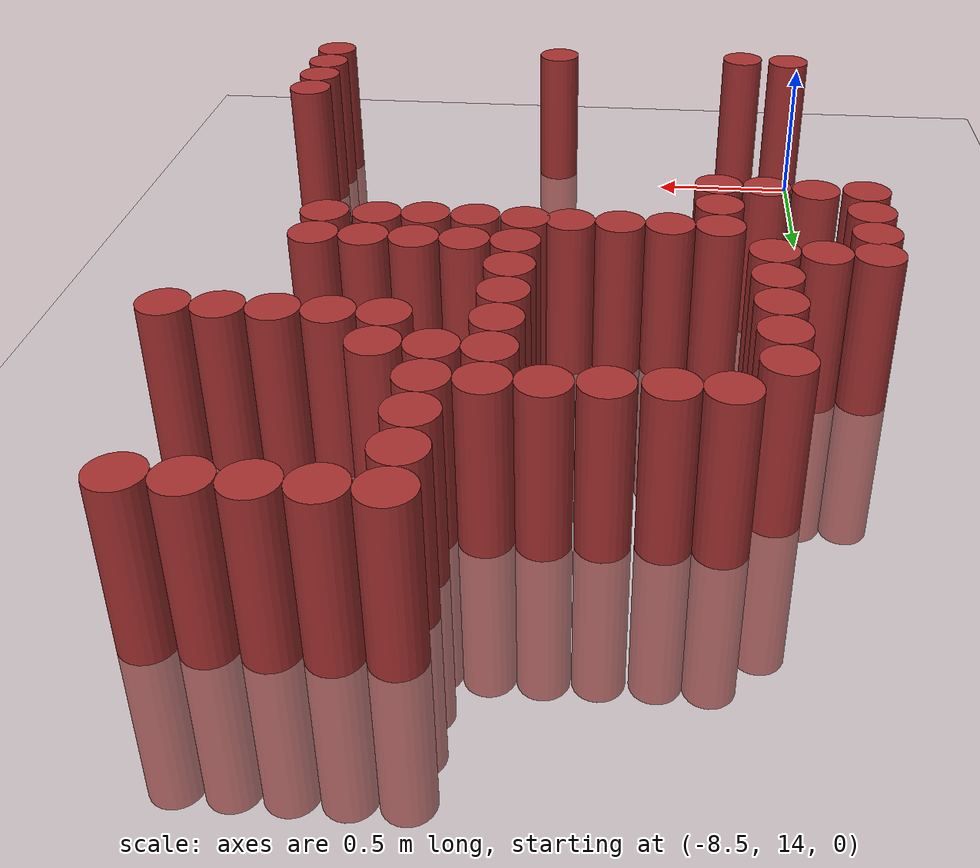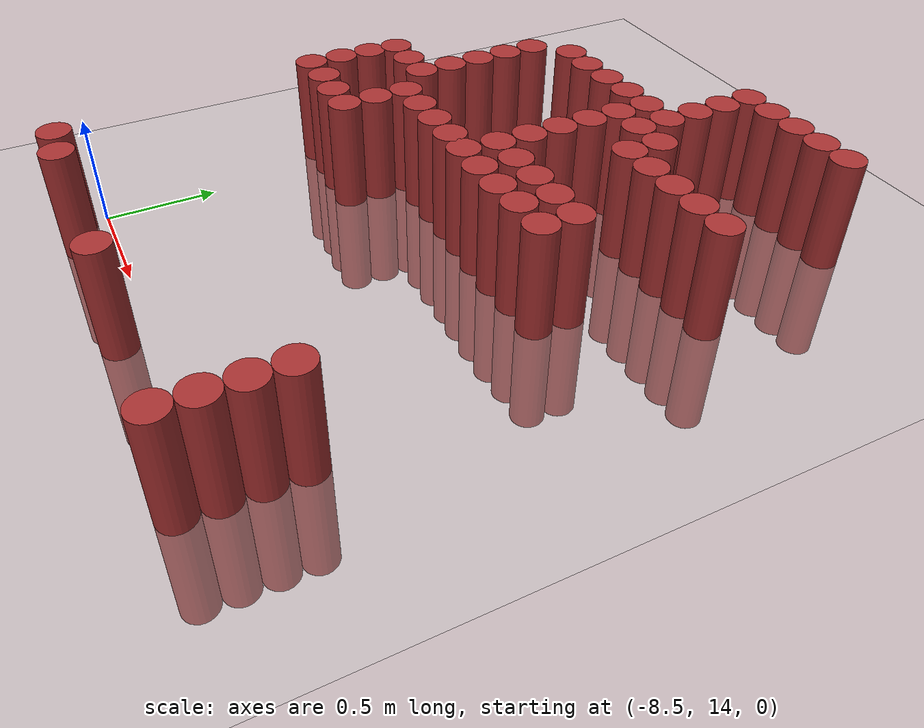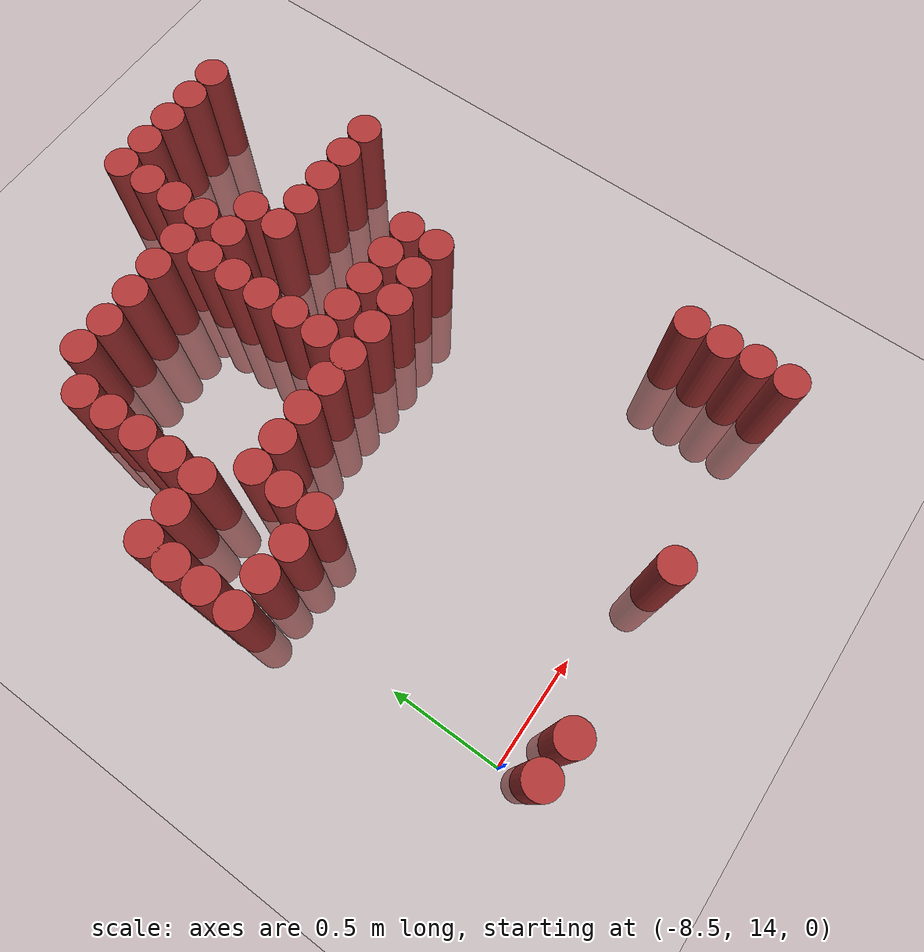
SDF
<sdf version="1.6">
 <world name="default">
  <model name="ground_plane">
   <static>1</static>
   <link name="link">
    <collision name="collision">
     <geometry><plane><normal>0 0 1</normal><size>100 100</size></plane></geometry>
     <surface><friction><ode><mu>100</mu><mu2>50</mu2></ode></friction></surface>
    </collision>
    <visual name="visual">
     <cast_shadows>0</cast_shadows>
     <geometry><plane><normal>0 0 1</normal><size>100 100</size></plane></geometry>
     <material>
      <script><uri>file://media/materials/scripts/gazebo.material</uri><name>Gazebo/Grey</name></script>
     </material>
    </visual>
   </link>
  </model>
  <model name="unit_cylinder_574">
   <static>1</static>
   <pose>-8.625 15.525 0 0 -0 0</pose>
   <link name="link">
    <inertial>
     <mass>1</mass>
     <inertia><ixx>0.145833</ixx><ixy>0</ixy><ixz>0</ixz><iyy>0.145833</iyy><iyz>0</iyz><izz>0.125</izz></inertia>
    </inertial>
    <collision name="collision">
     <geometry><cylinder><radius>0.075</radius><length>1</length></cylinder></geometry>
    </collision>
    <visual name="visual">
     <geometry><cylinder><radius>0.075</radius><length>1</length></cylinder></geometry>
     <material><ambient>0.648 0.192 0.192 1</ambient><diffuse>0.648 0.192 0.192 1</diffuse></material>
     <material>
      <script><name>Gazebo/Grey</name><uri>file://media/materials/scripts/gazebo.material</uri></script>
     </material>
    </visual>
   </link>
  </model>
  <model name="unit_cylinder_589">
   <static>1</static>
   <pose>-8.475 13.875 0 0 -0 0</pose>
   <link name="link">
    <inertial>
     <mass>1</mass>
     <inertia><ixx>0.145833</ixx><ixy>0</ixy><ixz>0</ixz><iyy>0.145833</iyy><iyz>0</iyz><izz>0.125</izz></inertia>
    </inertial>
    <collision name="collision">
     <geometry><cylinder><radius>0.075</radius><length>1</length></cylinder></geometry>
    </collision>
    <visual name="visual">
     <geometry><cylinder><radius>0.075</radius><length>1</length></cylinder></geometry>
     <material><ambient>0.648 0.192 0.192 1</ambient><diffuse>0.648 0.192 0.192 1</diffuse></material>
     <material>
      <script><name>Gazebo/Grey</name><uri>file://media/materials/scripts/gazebo.material</uri></script>
     </material>
    </visual>
   </link>
  </model>
  <model name="unit_cylinder_593">
   <static>1</static>
   <pose>-8.475 15.525 0 0 -0 0</pose>
   <link name="link">
    <inertial>
     <mass>1</mass>
     <inertia><ixx>0.145833</ixx><ixy>0</ixy><ixz>0</ixz><iyy>0.145833</iyy><iyz>0</iyz><izz>0.125</izz></inertia>
    </inertial>
    <collision name="collision">
     <geometry><cylinder><radius>0.075</radius><length>1</length></cylinder></geometry>
    </collision>
    <visual name="visual">
     <geometry><cylinder><radius>0.075</radius><length>1</length></cylinder></geometry>
     <material><ambient>0.648 0.192 0.192 1</ambient><diffuse>0.648 0.192 0.192 1</diffuse></material>
     <material>
      <script><name>Gazebo/Grey</name><uri>file://media/materials/scripts/gazebo.material</uri></script>
     </material>
    </visual>
   </link>
  </model>
  <model name="unit_cylinder_609">
   <static>1</static>
   <pose>-8.325 15.525 0 0 -0 0</pose>
   <link name="link">
    <inertial>
     <mass>1</mass>
     <inertia><ixx>0.145833</ixx><ixy>0</ixy><ixz>0</ixz><iyy>0.145833</iyy><iyz>0</iyz><izz>0.125</izz></inertia>
    </inertial>
    <collision name="collision">
     <geometry><cylinder><radius>0.075</radius><length>1</length></cylinder></geometry>
    </collision>
    <visual name="visual">
     <geometry><cylinder><radius>0.075</radius><length>1</length></cylinder></geometry>
     <material><ambient>0.648 0.192 0.192 1</ambient><diffuse>0.648 0.192 0.192 1</diffuse></material>
     <material>
      <script><name>Gazebo/Grey</name><uri>file://media/materials/scripts/gazebo.material</uri></script>
     </material>
    </visual>
   </link>
  </model>
  <model name="unit_cylinder_610">
   <static>1</static>
   <pose>-8.325 15.675 0 0 -0 0</pose>
   <link name="link">
    <inertial>
     <mass>1</mass>
     <inertia><ixx>0.145833</ixx><ixy>0</ixy><ixz>0</ixz><iyy>0.145833</iyy><iyz>0</iyz><izz>0.125</izz></inertia>
    </inertial>
    <collision name="collision">
     <geometry><cylinder><radius>0.075</radius><length>1</length></cylinder></geometry>
    </collision>
    <visual name="visual">
     <geometry><cylinder><radius>0.075</radius><length>1</length></cylinder></geometry>
     <material><ambient>0.648 0.192 0.192 1</ambient><diffuse>0.648 0.192 0.192 1</diffuse></material>
     <material>
      <script><name>Gazebo/Grey</name><uri>file://media/materials/scripts/gazebo.material</uri></script>
     </material>
    </visual>
   </link>
  </model>
  <model name="unit_cylinder_611">
   <static>1</static>
   <pose>-8.325 15.825 0 0 -0 0</pose>
   <link name="link">
    <inertial>
     <mass>1</mass>
     <inertia><ixx>0.145833</ixx><ixy>0</ixy><ixz>0</ixz><iyy>0.145833</iyy><iyz>0</iyz><izz>0.125</izz></inertia>
    </inertial>
    <collision name="collision">
     <geometry><cylinder><radius>0.075</radius><length>1</length></cylinder></geometry>
    </collision>
    <visual name="visual">
     <geometry><cylinder><radius>0.075</radius><length>1</length></cylinder></geometry>
     <material><ambient>0.648 0.192 0.192 1</ambient><diffuse>0.648 0.192 0.192 1</diffuse></material>
     <material>
      <script><name>Gazebo/Grey</name><uri>file://media/materials/scripts/gazebo.material</uri></script>
     </material>
    </visual>
   </link>
  </model>
  <model name="unit_cylinder_612">
   <static>1</static>
   <pose>-8.325 15.975 0 0 -0 0</pose>
   <link name="link">
    <inertial>
     <mass>1</mass>
     <inertia><ixx>0.145833</ixx><ixy>0</ixy><ixz>0</ixz><iyy>0.145833</iyy><iyz>0</iyz><izz>0.125</izz></inertia>
    </inertial>
    <collision name="collision">
     <geometry><cylinder><radius>0.075</radius><length>1</length></cylinder></geometry>
    </collision>
    <visual name="visual">
     <geometry><cylinder><radius>0.075</radius><length>1</length></cylinder></geometry>
     <material><ambient>0.648 0.192 0.192 1</ambient><diffuse>0.648 0.192 0.192 1</diffuse></material>
     <material>
      <script><name>Gazebo/Grey</name><uri>file://media/materials/scripts/gazebo.material</uri></script>
     </material>
    </visual>
   </link>
  </model>
  <model name="unit_cylinder_613">
   <static>1</static>
   <pose>-8.325 16.125 0 0 -0 0</pose>
   <link name="link">
    <inertial>
     <mass>1</mass>
     <inertia><ixx>0.145833</ixx><ixy>0</ixy><ixz>0</ixz><iyy>0.145833</iyy><iyz>0</iyz><izz>0.125</izz></inertia>
    </inertial>
    <collision name="collision">
     <geometry><cylinder><radius>0.075</radius><length>1</length></cylinder></geometry>
    </collision>
    <visual name="visual">
     <geometry><cylinder><radius>0.075</radius><length>1</length></cylinder></geometry>
     <material><ambient>0.648 0.192 0.192 1</ambient><diffuse>0.648 0.192 0.192 1</diffuse></material>
     <material>
      <script><name>Gazebo/Grey</name><uri>file://media/materials/scripts/gazebo.material</uri></script>
     </material>
    </visual>
   </link>
  </model>
  <model name="unit_cylinder_629">
   <static>1</static>
   <pose>-8.175 15.075 0 0 -0 0</pose>
   <link name="link">
    <inertial>
     <mass>1</mass>
     <inertia><ixx>0.145833</ixx><ixy>0</ixy><ixz>0</ixz><iyy>0.145833</iyy><iyz>0</iyz><izz>0.125</izz></inertia>
    </inertial>
    <collision name="collision">
     <geometry><cylinder><radius>0.075</radius><length>1</length></cylinder></geometry>
    </collision>
    <visual name="visual">
     <geometry><cylinder><radius>0.075</radius><length>1</length></cylinder></geometry>
     <material><ambient>0.648 0.192 0.192 1</ambient><diffuse>0.648 0.192 0.192 1</diffuse></material>
     <material>
      <script><name>Gazebo/Grey</name><uri>file://media/materials/scripts/gazebo.material</uri></script>
     </material>
    </visual>
   </link>
  </model>
  <model name="unit_cylinder_630">
   <static>1</static>
   <pose>-8.175 15.225 0 0 -0 0</pose>
   <link name="link">
    <inertial>
     <mass>1</mass>
     <inertia><ixx>0.145833</ixx><ixy>0</ixy><ixz>0</ixz><iyy>0.145833</iyy><iyz>0</iyz><izz>0.125</izz></inertia>
    </inertial>
    <collision name="collision">
     <geometry><cylinder><radius>0.075</radius><length>1</length></cylinder></geometry>
    </collision>
    <visual name="visual">
     <geometry><cylinder><radius>0.075</radius><length>1</length></cylinder></geometry>
     <material><ambient>0.648 0.192 0.192 1</ambient><diffuse>0.648 0.192 0.192 1</diffuse></material>
     <material>
      <script><name>Gazebo/Grey</name><uri>file://media/materials/scripts/gazebo.material</uri></script>
     </material>
    </visual>
   </link>
  </model>
  <model name="unit_cylinder_631">
   <static>1</static>
   <pose>-8.175 15.375 0 0 -0 0</pose>
   <link name="link">
    <inertial>
     <mass>1</mass>
     <inertia><ixx>0.145833</ixx><ixy>0</ixy><ixz>0</ixz><iyy>0.145833</iyy><iyz>0</iyz><izz>0.125</izz></inertia>
    </inertial>
    <collision name="collision">
     <geometry><cylinder><radius>0.075</radius><length>1</length></cylinder></geometry>
    </collision>
    <visual name="visual">
     <geometry><cylinder><radius>0.075</radius><length>1</length></cylinder></geometry>
     <material><ambient>0.648 0.192 0.192 1</ambient><diffuse>0.648 0.192 0.192 1</diffuse></material>
     <material>
      <script><name>Gazebo/Grey</name><uri>file://media/materials/scripts/gazebo.material</uri></script>
     </material>
    </visual>
   </link>
  </model>
  <model name="unit_cylinder_650">
   <static>1</static>
   <pose>-8.025 15.375 0 0 -0 0</pose>
   <link name="link">
    <inertial>
     <mass>1</mass>
     <inertia><ixx>0.145833</ixx><ixy>0</ixy><ixz>0</ixz><iyy>0.145833</iyy><iyz>0</iyz><izz>0.125</izz></inertia>
    </inertial>
    <collision name="collision">
     <geometry><cylinder><radius>0.075</radius><length>1</length></cylinder></geometry>
    </collision>
    <visual name="visual">
     <geometry><cylinder><radius>0.075</radius><length>1</length></cylinder></geometry>
     <material><ambient>0.648 0.192 0.192 1</ambient><diffuse>0.648 0.192 0.192 1</diffuse></material>
     <material>
      <script><name>Gazebo/Grey</name><uri>file://media/materials/scripts/gazebo.material</uri></script>
     </material>
    </visual>
   </link>
  </model>
  <model name="unit_cylinder_661">
   <static>1</static>
   <pose>-7.875 15.375 0 0 -0 0</pose>
   <link name="link">
    <inertial>
     <mass>1</mass>
     <inertia><ixx>0.145833</ixx><ixy>0</ixy><ixz>0</ixz><iyy>0.145833</iyy><iyz>0</iyz><izz>0.125</izz></inertia>
    </inertial>
    <collision name="collision">
     <geometry><cylinder><radius>0.075</radius><length>1</length></cylinder></geometry>
    </collision>
    <visual name="visual">
     <geometry><cylinder><radius>0.075</radius><length>1</length></cylinder></geometry>
     <material><ambient>0.648 0.192 0.192 1</ambient><diffuse>0.648 0.192 0.192 1</diffuse></material>
     <material>
      <script><name>Gazebo/Grey</name><uri>file://media/materials/scripts/gazebo.material</uri></script>
     </material>
    </visual>
   </link>
  </model>
  <model name="unit_cylinder_687">
   <static>1</static>
   <pose>-7.725 15.375 0 0 -0 0</pose>
   <link name="link">
    <inertial>
     <mass>1</mass>
     <inertia><ixx>0.145833</ixx><ixy>0</ixy><ixz>0</ixz><iyy>0.145833</iyy><iyz>0</iyz><izz>0.125</izz></inertia>
    </inertial>
    <collision name="collision">
     <geometry><cylinder><radius>0.075</radius><length>1</length></cylinder></geometry>
    </collision>
    <visual name="visual">
     <geometry><cylinder><radius>0.075</radius><length>1</length></cylinder></geometry>
     <material><ambient>0.648 0.192 0.192 1</ambient><diffuse>0.648 0.192 0.192 1</diffuse></material>
     <material>
      <script><name>Gazebo/Grey</name><uri>file://media/materials/scripts/gazebo.material</uri></script>
     </material>
    </visual>
   </link>
  </model>
  <model name="unit_cylinder_688">
   <static>1</static>
   <pose>-7.725 16.275 0 0 -0 0</pose>
   <link name="link">
    <inertial>
     <mass>1</mass>
     <inertia><ixx>0.145833</ixx><ixy>0</ixy><ixz>0</ixz><iyy>0.145833</iyy><iyz>0</iyz><izz>0.125</izz></inertia>
    </inertial>
    <collision name="collision">
     <geometry><cylinder><radius>0.075</radius><length>1</length></cylinder></geometry>
    </collision>
    <visual name="visual">
     <geometry><cylinder><radius>0.075</radius><length>1</length></cylinder></geometry>
     <material><ambient>0.648 0.192 0.192 1</ambient><diffuse>0.648 0.192 0.192 1</diffuse></material>
     <material>
      <script><name>Gazebo/Grey</name><uri>file://media/materials/scripts/gazebo.material</uri></script>
     </material>
    </visual>
   </link>
  </model>
  <model name="unit_cylinder_707">
   <static>1</static>
   <pose>-7.575 13.875 0 0 -0 0</pose>
   <link name="link">
    <inertial>
     <mass>1</mass>
     <inertia><ixx>0.145833</ixx><ixy>0</ixy><ixz>0</ixz><iyy>0.145833</iyy><iyz>0</iyz><izz>0.125</izz></inertia>
    </inertial>
    <collision name="collision">
     <geometry><cylinder><radius>0.075</radius><length>1</length></cylinder></geometry>
    </collision>
    <visual name="visual">
     <geometry><cylinder><radius>0.075</radius><length>1</length></cylinder></geometry>
     <material><ambient>0.648 0.192 0.192 1</ambient><diffuse>0.648 0.192 0.192 1</diffuse></material>
     <material>
      <script><name>Gazebo/Grey</name><uri>file://media/materials/scripts/gazebo.material</uri></script>
     </material>
    </visual>
   </link>
  </model>
  <model name="unit_cylinder_711">
   <static>1</static>
   <pose>-7.575 15.525 0 0 -0 0</pose>
   <link name="link">
    <inertial>
     <mass>1</mass>
     <inertia><ixx>0.145833</ixx><ixy>0</ixy><ixz>0</ixz><iyy>0.145833</iyy><iyz>0</iyz><izz>0.125</izz></inertia>
    </inertial>
    <collision name="collision">
     <geometry><cylinder><radius>0.075</radius><length>1</length></cylinder></geometry>
    </collision>
    <visual name="visual">
     <geometry><cylinder><radius>0.075</radius><length>1</length></cylinder></geometry>
     <material><ambient>0.648 0.192 0.192 1</ambient><diffuse>0.648 0.192 0.192 1</diffuse></material>
     <material>
      <script><name>Gazebo/Grey</name><uri>file://media/materials/scripts/gazebo.material</uri></script>
     </material>
    </visual>
   </link>
  </model>
  <model name="unit_cylinder_712">
   <static>1</static>
   <pose>-7.575 15.675 0 0 -0 0</pose>
   <link name="link">
    <inertial>
     <mass>1</mass>
     <inertia><ixx>0.145833</ixx><ixy>0</ixy><ixz>0</ixz><iyy>0.145833</iyy><iyz>0</iyz><izz>0.125</izz></inertia>
    </inertial>
    <collision name="collision">
     <geometry><cylinder><radius>0.075</radius><length>1</length></cylinder></geometry>
    </collision>
    <visual name="visual">
     <geometry><cylinder><radius>0.075</radius><length>1</length></cylinder></geometry>
     <material><ambient>0.648 0.192 0.192 1</ambient><diffuse>0.648 0.192 0.192 1</diffuse></material>
     <material>
      <script><name>Gazebo/Grey</name><uri>file://media/materials/scripts/gazebo.material</uri></script>
     </material>
    </visual>
   </link>
  </model>
  <model name="unit_cylinder_713">
   <static>1</static>
   <pose>-7.575 15.825 0 0 -0 0</pose>
   <link name="link">
    <inertial>
     <mass>1</mass>
     <inertia><ixx>0.145833</ixx><ixy>0</ixy><ixz>0</ixz><iyy>0.145833</iyy><iyz>0</iyz><izz>0.125</izz></inertia>
    </inertial>
    <collision name="collision">
     <geometry><cylinder><radius>0.075</radius><length>1</length></cylinder></geometry>
    </collision>
    <visual name="visual">
     <geometry><cylinder><radius>0.075</radius><length>1</length></cylinder></geometry>
     <material><ambient>0.648 0.192 0.192 1</ambient><diffuse>0.648 0.192 0.192 1</diffuse></material>
     <material>
      <script><name>Gazebo/Grey</name><uri>file://media/materials/scripts/gazebo.material</uri></script>
     </material>
    </visual>
   </link>
  </model>
  <model name="unit_cylinder_714">
   <static>1</static>
   <pose>-7.575 15.975 0 0 -0 0</pose>
   <link name="link">
    <inertial>
     <mass>1</mass>
     <inertia><ixx>0.145833</ixx><ixy>0</ixy><ixz>0</ixz><iyy>0.145833</iyy><iyz>0</iyz><izz>0.125</izz></inertia>
    </inertial>
    <collision name="collision">
     <geometry><cylinder><radius>0.075</radius><length>1</length></cylinder></geometry>
    </collision>
    <visual name="visual">
     <geometry><cylinder><radius>0.075</radius><length>1</length></cylinder></geometry>
     <material><ambient>0.648 0.192 0.192 1</ambient><diffuse>0.648 0.192 0.192 1</diffuse></material>
     <material>
      <script><name>Gazebo/Grey</name><uri>file://media/materials/scripts/gazebo.material</uri></script>
     </material>
    </visual>
   </link>
  </model>
  <model name="unit_cylinder_715">
   <static>1</static>
   <pose>-7.575 16.125 0 0 -0 0</pose>
   <link name="link">
    <inertial>
     <mass>1</mass>
     <inertia><ixx>0.145833</ixx><ixy>0</ixy><ixz>0</ixz><iyy>0.145833</iyy><iyz>0</iyz><izz>0.125</izz></inertia>
    </inertial>
    <collision name="collision">
     <geometry><cylinder><radius>0.075</radius><length>1</length></cylinder></geometry>
    </collision>
    <visual name="visual">
     <geometry><cylinder><radius>0.075</radius><length>1</length></cylinder></geometry>
     <material><ambient>0.648 0.192 0.192 1</ambient><diffuse>0.648 0.192 0.192 1</diffuse></material>
     <material>
      <script><name>Gazebo/Grey</name><uri>file://media/materials/scripts/gazebo.material</uri></script>
     </material>
    </visual>
   </link>
  </model>
  <model name="unit_cylinder_716">
   <static>1</static>
   <pose>-7.575 16.275 0 0 -0 0</pose>
   <link name="link">
    <inertial>
     <mass>1</mass>
     <inertia><ixx>0.145833</ixx><ixy>0</ixy><ixz>0</ixz><iyy>0.145833</iyy><iyz>0</iyz><izz>0.125</izz></inertia>
    </inertial>
    <collision name="collision">
     <geometry><cylinder><radius>0.075</radius><length>1</length></cylinder></geometry>
    </collision>
    <visual name="visual">
     <geometry><cylinder><radius>0.075</radius><length>1</length></cylinder></geometry>
     <material><ambient>0.648 0.192 0.192 1</ambient><diffuse>0.648 0.192 0.192 1</diffuse></material>
     <material>
      <script><name>Gazebo/Grey</name><uri>file://media/materials/scripts/gazebo.material</uri></script>
     </material>
    </visual>
   </link>
  </model>
  <model name="unit_cylinder_734">
   <static>1</static>
   <pose>-7.425 15.525 0 0 -0 0</pose>
   <link name="link">
    <inertial>
     <mass>1</mass>
     <inertia><ixx>0.145833</ixx><ixy>0</ixy><ixz>0</ixz><iyy>0.145833</iyy><iyz>0</iyz><izz>0.125</izz></inertia>
    </inertial>
    <collision name="collision">
     <geometry><cylinder><radius>0.075</radius><length>1</length></cylinder></geometry>
    </collision>
    <visual name="visual">
     <geometry><cylinder><radius>0.075</radius><length>1</length></cylinder></geometry>
     <material><ambient>0.648 0.192 0.192 1</ambient><diffuse>0.648 0.192 0.192 1</diffuse></material>
     <material>
      <script><name>Gazebo/Grey</name><uri>file://media/materials/scripts/gazebo.material</uri></script>
     </material>
    </visual>
   </link>
  </model>
  <model name="unit_cylinder_735">
   <static>1</static>
   <pose>-7.425 16.125 0 0 -0 0</pose>
   <link name="link">
    <inertial>
     <mass>1</mass>
     <inertia><ixx>0.145833</ixx><ixy>0</ixy><ixz>0</ixz><iyy>0.145833</iyy><iyz>0</iyz><izz>0.125</izz></inertia>
    </inertial>
    <collision name="collision">
     <geometry><cylinder><radius>0.075</radius><length>1</length></cylinder></geometry>
    </collision>
    <visual name="visual">
     <geometry><cylinder><radius>0.075</radius><length>1</length></cylinder></geometry>
     <material><ambient>0.648 0.192 0.192 1</ambient><diffuse>0.648 0.192 0.192 1</diffuse></material>
     <material>
      <script><name>Gazebo/Grey</name><uri>file://media/materials/scripts/gazebo.material</uri></script>
     </material>
    </visual>
   </link>
  </model>
  <model name="unit_cylinder_736">
   <static>1</static>
   <pose>-7.425 16.275 0 0 -0 0</pose>
   <link name="link">
    <inertial>
     <mass>1</mass>
     <inertia><ixx>0.145833</ixx><ixy>0</ixy><ixz>0</ixz><iyy>0.145833</iyy><iyz>0</iyz><izz>0.125</izz></inertia>
    </inertial>
    <collision name="collision">
     <geometry><cylinder><radius>0.075</radius><length>1</length></cylinder></geometry>
    </collision>
    <visual name="visual">
     <geometry><cylinder><radius>0.075</radius><length>1</length></cylinder></geometry>
     <material><ambient>0.648 0.192 0.192 1</ambient><diffuse>0.648 0.192 0.192 1</diffuse></material>
     <material>
      <script><name>Gazebo/Grey</name><uri>file://media/materials/scripts/gazebo.material</uri></script>
     </material>
    </visual>
   </link>
  </model>
  <model name="unit_cylinder_737">
   <static>1</static>
   <pose>-7.425 16.425 0 0 -0 0</pose>
   <link name="link">
    <inertial>
     <mass>1</mass>
     <inertia><ixx>0.145833</ixx><ixy>0</ixy><ixz>0</ixz><iyy>0.145833</iyy><iyz>0</iyz><izz>0.125</izz></inertia>
    </inertial>
    <collision name="collision">
     <geometry><cylinder><radius>0.075</radius><length>1</length></cylinder></geometry>
    </collision>
    <visual name="visual">
     <geometry><cylinder><radius>0.075</radius><length>1</length></cylinder></geometry>
     <material><ambient>0.648 0.192 0.192 1</ambient><diffuse>0.648 0.192 0.192 1</diffuse></material>
     <material>
      <script><name>Gazebo/Grey</name><uri>file://media/materials/scripts/gazebo.material</uri></script>
     </material>
    </visual>
   </link>
  </model>
  <model name="unit_cylinder_738">
   <static>1</static>
   <pose>-7.425 16.575 0 0 -0 0</pose>
   <link name="link">
    <inertial>
     <mass>1</mass>
     <inertia><ixx>0.145833</ixx><ixy>0</ixy><ixz>0</ixz><iyy>0.145833</iyy><iyz>0</iyz><izz>0.125</izz></inertia>
    </inertial>
    <collision name="collision">
     <geometry><cylinder><radius>0.075</radius><length>1</length></cylinder></geometry>
    </collision>
    <visual name="visual">
     <geometry><cylinder><radius>0.075</radius><length>1</length></cylinder></geometry>
     <material><ambient>0.648 0.192 0.192 1</ambient><diffuse>0.648 0.192 0.192 1</diffuse></material>
     <material>
      <script><name>Gazebo/Grey</name><uri>file://media/materials/scripts/gazebo.material</uri></script>
     </material>
    </visual>
   </link>
  </model>
  <model name="unit_cylinder_739">
   <static>1</static>
   <pose>-7.425 16.725 0 0 -0 0</pose>
   <link name="link">
    <inertial>
     <mass>1</mass>
     <inertia><ixx>0.145833</ixx><ixy>0</ixy><ixz>0</ixz><iyy>0.145833</iyy><iyz>0</iyz><izz>0.125</izz></inertia>
    </inertial>
    <collision name="collision">
     <geometry><cylinder><radius>0.075</radius><length>1</length></cylinder></geometry>
    </collision>
    <visual name="visual">
     <geometry><cylinder><radius>0.075</radius><length>1</length></cylinder></geometry>
     <material><ambient>0.648 0.192 0.192 1</ambient><diffuse>0.648 0.192 0.192 1</diffuse></material>
     <material>
      <script><name>Gazebo/Grey</name><uri>file://media/materials/scripts/gazebo.material</uri></script>
     </material>
    </visual>
   </link>
  </model>
  <model name="unit_cylinder_757">
   <static>1</static>
   <pose>-7.275 15.525 0 0 -0 0</pose>
   <link name="link">
    <inertial>
     <mass>1</mass>
     <inertia><ixx>0.145833</ixx><ixy>0</ixy><ixz>0</ixz><iyy>0.145833</iyy><iyz>0</iyz><izz>0.125</izz></inertia>
    </inertial>
    <collision name="collision">
     <geometry><cylinder><radius>0.075</radius><length>1</length></cylinder></geometry>
    </collision>
    <visual name="visual">
     <geometry><cylinder><radius>0.075</radius><length>1</length></cylinder></geometry>
     <material><ambient>0.648 0.192 0.192 1</ambient><diffuse>0.648 0.192 0.192 1</diffuse></material>
     <material>
      <script><name>Gazebo/Grey</name><uri>file://media/materials/scripts/gazebo.material</uri></script>
     </material>
    </visual>
   </link>
  </model>
  <model name="unit_cylinder_758">
   <static>1</static>
   <pose>-7.275 15.975 0 0 -0 0</pose>
   <link name="link">
    <inertial>
     <mass>1</mass>
     <inertia><ixx>0.145833</ixx><ixy>0</ixy><ixz>0</ixz><iyy>0.145833</iyy><iyz>0</iyz><izz>0.125</izz></inertia>
    </inertial>
    <collision name="collision">
     <geometry><cylinder><radius>0.075</radius><length>1</length></cylinder></geometry>
    </collision>
    <visual name="visual">
     <geometry><cylinder><radius>0.075</radius><length>1</length></cylinder></geometry>
     <material><ambient>0.648 0.192 0.192 1</ambient><diffuse>0.648 0.192 0.192 1</diffuse></material>
     <material>
      <script><name>Gazebo/Grey</name><uri>file://media/materials/scripts/gazebo.material</uri></script>
     </material>
    </visual>
   </link>
  </model>
  <model name="unit_cylinder_759">
   <static>1</static>
   <pose>-7.275 16.125 0 0 -0 0</pose>
   <link name="link">
    <inertial>
     <mass>1</mass>
     <inertia><ixx>0.145833</ixx><ixy>0</ixy><ixz>0</ixz><iyy>0.145833</iyy><iyz>0</iyz><izz>0.125</izz></inertia>
    </inertial>
    <collision name="collision">
     <geometry><cylinder><radius>0.075</radius><length>1</length></cylinder></geometry>
    </collision>
    <visual name="visual">
     <geometry><cylinder><radius>0.075</radius><length>1</length></cylinder></geometry>
     <material><ambient>0.648 0.192 0.192 1</ambient><diffuse>0.648 0.192 0.192 1</diffuse></material>
     <material>
      <script><name>Gazebo/Grey</name><uri>file://media/materials/scripts/gazebo.material</uri></script>
     </material>
    </visual>
   </link>
  </model>
  <model name="unit_cylinder_760">
   <static>1</static>
   <pose>-7.275 16.725 0 0 -0 0</pose>
   <link name="link">
    <inertial>
     <mass>1</mass>
     <inertia><ixx>0.145833</ixx><ixy>0</ixy><ixz>0</ixz><iyy>0.145833</iyy><iyz>0</iyz><izz>0.125</izz></inertia>
    </inertial>
    <collision name="collision">
     <geometry><cylinder><radius>0.075</radius><length>1</length></cylinder></geometry>
    </collision>
    <visual name="visual">
     <geometry><cylinder><radius>0.075</radius><length>1</length></cylinder></geometry>
     <material><ambient>0.648 0.192 0.192 1</ambient><diffuse>0.648 0.192 0.192 1</diffuse></material>
     <material>
      <script><name>Gazebo/Grey</name><uri>file://media/materials/scripts/gazebo.material</uri></script>
     </material>
    </visual>
   </link>
  </model>
  <model name="unit_cylinder_778">
   <static>1</static>
   <pose>-7.125 15.525 0 0 -0 0</pose>
   <link name="link">
    <inertial>
     <mass>1</mass>
     <inertia><ixx>0.145833</ixx><ixy>0</ixy><ixz>0</ixz><iyy>0.145833</iyy><iyz>0</iyz><izz>0.125</izz></inertia>
    </inertial>
    <collision name="collision">
     <geometry><cylinder><radius>0.075</radius><length>1</length></cylinder></geometry>
    </collision>
    <visual name="visual">
     <geometry><cylinder><radius>0.075</radius><length>1</length></cylinder></geometry>
     <material><ambient>0.648 0.192 0.192 1</ambient><diffuse>0.648 0.192 0.192 1</diffuse></material>
     <material>
      <script><name>Gazebo/Grey</name><uri>file://media/materials/scripts/gazebo.material</uri></script>
     </material>
    </visual>
   </link>
  </model>
  <model name="unit_cylinder_779">
   <static>1</static>
   <pose>-7.125 15.975 0 0 -0 0</pose>
   <link name="link">
    <inertial>
     <mass>1</mass>
     <inertia><ixx>0.145833</ixx><ixy>0</ixy><ixz>0</ixz><iyy>0.145833</iyy><iyz>0</iyz><izz>0.125</izz></inertia>
    </inertial>
    <collision name="collision">
     <geometry><cylinder><radius>0.075</radius><length>1</length></cylinder></geometry>
    </collision>
    <visual name="visual">
     <geometry><cylinder><radius>0.075</radius><length>1</length></cylinder></geometry>
     <material><ambient>0.648 0.192 0.192 1</ambient><diffuse>0.648 0.192 0.192 1</diffuse></material>
     <material>
      <script><name>Gazebo/Grey</name><uri>file://media/materials/scripts/gazebo.material</uri></script>
     </material>
    </visual>
   </link>
  </model>
  <model name="unit_cylinder_780">
   <static>1</static>
   <pose>-7.125 16.725 0 0 -0 0</pose>
   <link name="link">
    <inertial>
     <mass>1</mass>
     <inertia><ixx>0.145833</ixx><ixy>0</ixy><ixz>0</ixz><iyy>0.145833</iyy><iyz>0</iyz><izz>0.125</izz></inertia>
    </inertial>
    <collision name="collision">
     <geometry><cylinder><radius>0.075</radius><length>1</length></cylinder></geometry>
    </collision>
    <visual name="visual">
     <geometry><cylinder><radius>0.075</radius><length>1</length></cylinder></geometry>
     <material><ambient>0.648 0.192 0.192 1</ambient><diffuse>0.648 0.192 0.192 1</diffuse></material>
     <material>
      <script><name>Gazebo/Grey</name><uri>file://media/materials/scripts/gazebo.material</uri></script>
     </material>
    </visual>
   </link>
  </model>
  <model name="unit_cylinder_791">
   <static>1</static>
   <pose>-6.975 15.375 0 0 -0 0</pose>
   <link name="link">
    <inertial>
     <mass>1</mass>
     <inertia><ixx>0.145833</ixx><ixy>0</ixy><ixz>0</ixz><iyy>0.145833</iyy><iyz>0</iyz><izz>0.125</izz></inertia>
    </inertial>
    <collision name="collision">
     <geometry><cylinder><radius>0.075</radius><length>1</length></cylinder></geometry>
    </collision>
    <visual name="visual">
     <geometry><cylinder><radius>0.075</radius><length>1</length></cylinder></geometry>
     <material><ambient>0.648 0.192 0.192 1</ambient><diffuse>0.648 0.192 0.192 1</diffuse></material>
     <material>
      <script><name>Gazebo/Grey</name><uri>file://media/materials/scripts/gazebo.material</uri></script>
     </material>
    </visual>
   </link>
  </model>
  <model name="unit_cylinder_792">
   <static>1</static>
   <pose>-6.975 15.525 0 0 -0 0</pose>
   <link name="link">
    <inertial>
     <mass>1</mass>
     <inertia><ixx>0.145833</ixx><ixy>0</ixy><ixz>0</ixz><iyy>0.145833</iyy><iyz>0</iyz><izz>0.125</izz></inertia>
    </inertial>
    <collision name="collision">
     <geometry><cylinder><radius>0.075</radius><length>1</length></cylinder></geometry>
    </collision>
    <visual name="visual">
     <geometry><cylinder><radius>0.075</radius><length>1</length></cylinder></geometry>
     <material><ambient>0.648 0.192 0.192 1</ambient><diffuse>0.648 0.192 0.192 1</diffuse></material>
     <material>
      <script><name>Gazebo/Grey</name><uri>file://media/materials/scripts/gazebo.material</uri></script>
     </material>
    </visual>
   </link>
  </model>
  <model name="unit_cylinder_793">
   <static>1</static>
   <pose>-6.975 15.975 0 0 -0 0</pose>
   <link name="link">
    <inertial>
     <mass>1</mass>
     <inertia><ixx>0.145833</ixx><ixy>0</ixy><ixz>0</ixz><iyy>0.145833</iyy><iyz>0</iyz><izz>0.125</izz></inertia>
    </inertial>
    <collision name="collision">
     <geometry><cylinder><radius>0.075</radius><length>1</length></cylinder></geometry>
    </collision>
    <visual name="visual">
     <geometry><cylinder><radius>0.075</radius><length>1</length></cylinder></geometry>
     <material><ambient>0.648 0.192 0.192 1</ambient><diffuse>0.648 0.192 0.192 1</diffuse></material>
     <material>
      <script><name>Gazebo/Grey</name><uri>file://media/materials/scripts/gazebo.material</uri></script>
     </material>
    </visual>
   </link>
  </model>
  <model name="unit_cylinder_794">
   <static>1</static>
   <pose>-6.975 16.725 0 0 -0 0</pose>
   <link name="link">
    <inertial>
     <mass>1</mass>
     <inertia><ixx>0.145833</ixx><ixy>0</ixy><ixz>0</ixz><iyy>0.145833</iyy><iyz>0</iyz><izz>0.125</izz></inertia>
    </inertial>
    <collision name="collision">
     <geometry><cylinder><radius>0.075</radius><length>1</length></cylinder></geometry>
    </collision>
    <visual name="visual">
     <geometry><cylinder><radius>0.075</radius><length>1</length></cylinder></geometry>
     <material><ambient>0.648 0.192 0.192 1</ambient><diffuse>0.648 0.192 0.192 1</diffuse></material>
     <material>
      <script><name>Gazebo/Grey</name><uri>file://media/materials/scripts/gazebo.material</uri></script>
     </material>
    </visual>
   </link>
  </model>
  <model name="unit_cylinder_807">
   <static>1</static>
   <pose>-6.825 15.975 0 0 -0 0</pose>
   <link name="link">
    <inertial>
     <mass>1</mass>
     <inertia><ixx>0.145833</ixx><ixy>0</ixy><ixz>0</ixz><iyy>0.145833</iyy><iyz>0</iyz><izz>0.125</izz></inertia>
    </inertial>
    <collision name="collision">
     <geometry><cylinder><radius>0.075</radius><length>1</length></cylinder></geometry>
    </collision>
    <visual name="visual">
     <geometry><cylinder><radius>0.075</radius><length>1</length></cylinder></geometry>
     <material><ambient>0.648 0.192 0.192 1</ambient><diffuse>0.648 0.192 0.192 1</diffuse></material>
     <material>
      <script><name>Gazebo/Grey</name><uri>file://media/materials/scripts/gazebo.material</uri></script>
     </material>
    </visual>
   </link>
  </model>
  <model name="unit_cylinder_808">
   <static>1</static>
   <pose>-6.825 16.725 0 0 -0 0</pose>
   <link name="link">
    <inertial>
     <mass>1</mass>
     <inertia><ixx>0.145833</ixx><ixy>0</ixy><ixz>0</ixz><iyy>0.145833</iyy><iyz>0</iyz><izz>0.125</izz></inertia>
    </inertial>
    <collision name="collision">
     <geometry><cylinder><radius>0.075</radius><length>1</length></cylinder></geometry>
    </collision>
    <visual name="visual">
     <geometry><cylinder><radius>0.075</radius><length>1</length></cylinder></geometry>
     <material><ambient>0.648 0.192 0.192 1</ambient><diffuse>0.648 0.192 0.192 1</diffuse></material>
     <material>
      <script><name>Gazebo/Grey</name><uri>file://media/materials/scripts/gazebo.material</uri></script>
     </material>
    </visual>
   </link>
  </model>
  <model name="unit_cylinder_826">
   <static>1</static>
   <pose>-6.675 13.875 0 0 -0 0</pose>
   <link name="link">
    <inertial>
     <mass>1</mass>
     <inertia><ixx>0.145833</ixx><ixy>0</ixy><ixz>0</ixz><iyy>0.145833</iyy><iyz>0</iyz><izz>0.125</izz></inertia>
    </inertial>
    <collision name="collision">
     <geometry><cylinder><radius>0.075</radius><length>1</length></cylinder></geometry>
    </collision>
    <visual name="visual">
     <geometry><cylinder><radius>0.075</radius><length>1</length></cylinder></geometry>
     <material><ambient>0.648 0.192 0.192 1</ambient><diffuse>0.648 0.192 0.192 1</diffuse></material>
     <material>
      <script><name>Gazebo/Grey</name><uri>file://media/materials/scripts/gazebo.material</uri></script>
     </material>
    </visual>
   </link>
  </model>
  <model name="unit_cylinder_827">
   <static>1</static>
   <pose>-6.675 14.025 0 0 -0 0</pose>
   <link name="link">
    <inertial>
     <mass>1</mass>
     <inertia><ixx>0.145833</ixx><ixy>0</ixy><ixz>0</ixz><iyy>0.145833</iyy><iyz>0</iyz><izz>0.125</izz></inertia>
    </inertial>
    <collision name="collision">
     <geometry><cylinder><radius>0.075</radius><length>1</length></cylinder></geometry>
    </collision>
    <visual name="visual">
     <geometry><cylinder><radius>0.075</radius><length>1</length></cylinder></geometry>
     <material><ambient>0.648 0.192 0.192 1</ambient><diffuse>0.648 0.192 0.192 1</diffuse></material>
     <material>
      <script><name>Gazebo/Grey</name><uri>file://media/materials/scripts/gazebo.material</uri></script>
     </material>
    </visual>
   </link>
  </model>
  <model name="unit_cylinder_828">
   <static>1</static>
   <pose>-6.675 14.175 0 0 -0 0</pose>
   <link name="link">
    <inertial>
     <mass>1</mass>
     <inertia><ixx>0.145833</ixx><ixy>0</ixy><ixz>0</ixz><iyy>0.145833</iyy><iyz>0</iyz><izz>0.125</izz></inertia>
    </inertial>
    <collision name="collision">
     <geometry><cylinder><radius>0.075</radius><length>1</length></cylinder></geometry>
    </collision>
    <visual name="visual">
     <geometry><cylinder><radius>0.075</radius><length>1</length></cylinder></geometry>
     <material><ambient>0.648 0.192 0.192 1</ambient><diffuse>0.648 0.192 0.192 1</diffuse></material>
     <material>
      <script><name>Gazebo/Grey</name><uri>file://media/materials/scripts/gazebo.material</uri></script>
     </material>
    </visual>
   </link>
  </model>
  <model name="unit_cylinder_829">
   <static>1</static>
   <pose>-6.675 14.325 0 0 -0 0</pose>
   <link name="link">
    <inertial>
     <mass>1</mass>
     <inertia><ixx>0.145833</ixx><ixy>0</ixy><ixz>0</ixz><iyy>0.145833</iyy><iyz>0</iyz><izz>0.125</izz></inertia>
    </inertial>
    <collision name="collision">
     <geometry><cylinder><radius>0.075</radius><length>1</length></cylinder></geometry>
    </collision>
    <visual name="visual">
     <geometry><cylinder><radius>0.075</radius><length>1</length></cylinder></geometry>
     <material><ambient>0.648 0.192 0.192 1</ambient><diffuse>0.648 0.192 0.192 1</diffuse></material>
     <material>
      <script><name>Gazebo/Grey</name><uri>file://media/materials/scripts/gazebo.material</uri></script>
     </material>
    </visual>
   </link>
  </model>
  <model name="unit_cylinder_830">
   <static>1</static>
   <pose>-6.675 15.975 0 0 -0 0</pose>
   <link name="link">
    <inertial>
     <mass>1</mass>
     <inertia><ixx>0.145833</ixx><ixy>0</ixy><ixz>0</ixz><iyy>0.145833</iyy><iyz>0</iyz><izz>0.125</izz></inertia>
    </inertial>
    <collision name="collision">
     <geometry><cylinder><radius>0.075</radius><length>1</length></cylinder></geometry>
    </collision>
    <visual name="visual">
     <geometry><cylinder><radius>0.075</radius><length>1</length></cylinder></geometry>
     <material><ambient>0.648 0.192 0.192 1</ambient><diffuse>0.648 0.192 0.192 1</diffuse></material>
     <material>
      <script><name>Gazebo/Grey</name><uri>file://media/materials/scripts/gazebo.material</uri></script>
     </material>
    </visual>
   </link>
  </model>
  <model name="unit_cylinder_589_clone">
   <static>1</static>
   <pose>-8.29816 13.8598 0 0 -0 0</pose>
   <link name="link">
    <inertial>
     <mass>1</mass>
     <inertia><ixx>0.145833</ixx><ixy>0</ixy><ixz>0</ixz><iyy>0.145833</iyy><iyz>0</iyz><izz>0.125</izz></inertia>
    </inertial>
    <collision name="collision">
     <geometry><cylinder><radius>0.075</radius><length>1</length></cylinder></geometry>
    </collision>
    <visual name="visual">
     <geometry><cylinder><radius>0.075</radius><length>1</length></cylinder></geometry>
     <material><ambient>0.648 0.192 0.192 1</ambient><diffuse>0.648 0.192 0.192 1</diffuse></material>
     <material>
      <script><name>Gazebo/Grey</name><uri>file://media/materials/scripts/gazebo.material</uri></script>
     </material>
    </visual>
   </link>
  </model>
  <model name="unit_cylinder_614_clone">
   <static>1</static>
   <pose>-8.18413 16.2651 0 0 -0 0</pose>
   <link name="link">
    <inertial>
     <mass>1</mass>
     <inertia><ixx>0.145833</ixx><ixy>0</ixy><ixz>0</ixz><iyy>0.145833</iyy><iyz>0</iyz><izz>0.125</izz></inertia>
    </inertial>
    <collision name="collision">
     <geometry><cylinder><radius>0.075</radius><length>1</length></cylinder></geometry>
    </collision>
    <visual name="visual">
     <geometry><cylinder><radius>0.075</radius><length>1</length></cylinder></geometry>
     <material><ambient>0.648 0.192 0.192 1</ambient><diffuse>0.648 0.192 0.192 1</diffuse></material>
     <material>
      <script><name>Gazebo/Grey</name><uri>file://media/materials/scripts/gazebo.material</uri></script>
     </material>
    </visual>
   </link>
  </model>
  <model name="unit_cylinder_614_clone_0">
   <static>1</static>
   <pose>-8.03572 16.2613 0 0 -0 0</pose>
   <link name="link">
    <inertial>
     <mass>1</mass>
     <inertia><ixx>0.145833</ixx><ixy>0</ixy><ixz>0</ixz><iyy>0.145833</iyy><iyz>0</iyz><izz>0.125</izz></inertia>
    </inertial>
    <collision name="collision">
     <geometry><cylinder><radius>0.075</radius><length>1</length></cylinder></geometry>
    </collision>
    <visual name="visual">
     <geometry><cylinder><radius>0.075</radius><length>1</length></cylinder></geometry>
     <material><ambient>0.648 0.192 0.192 1</ambient><diffuse>0.648 0.192 0.192 1</diffuse></material>
     <material>
      <script><name>Gazebo/Grey</name><uri>file://media/materials/scripts/gazebo.material</uri></script>
     </material>
    </visual>
   </link>
  </model>
  <model name="unit_cylinder_614_clone_1">
   <static>1</static>
   <pose>-7.87765 16.2672 0 0 -0 0</pose>
   <link name="link">
    <inertial>
     <mass>1</mass>
     <inertia><ixx>0.145833</ixx><ixy>0</ixy><ixz>0</ixz><iyy>0.145833</iyy><iyz>0</iyz><izz>0.125</izz></inertia>
    </inertial>
    <collision name="collision">
     <geometry><cylinder><radius>0.075</radius><length>1</length></cylinder></geometry>
    </collision>
    <visual name="visual">
     <geometry><cylinder><radius>0.075</radius><length>1</length></cylinder></geometry>
     <material><ambient>0.648 0.192 0.192 1</ambient><diffuse>0.648 0.192 0.192 1</diffuse></material>
     <material>
      <script><name>Gazebo/Grey</name><uri>file://media/materials/scripts/gazebo.material</uri></script>
     </material>
    </visual>
   </link>
  </model>
  <model name="unit_cylinder_687_clone">
   <static>1</static>
   <pose>-7.58867 15.3702 0 0 -0 0</pose>
   <link name="link">
    <inertial>
     <mass>1</mass>
     <inertia><ixx>0.145833</ixx><ixy>0</ixy><ixz>0</ixz><iyy>0.145833</iyy><iyz>0</iyz><izz>0.125</izz></inertia>
    </inertial>
    <collision name="collision">
     <geometry><cylinder><radius>0.075</radius><length>1</length></cylinder></geometry>
    </collision>
    <visual name="visual">
     <geometry><cylinder><radius>0.075</radius><length>1</length></cylinder></geometry>
     <material><ambient>0.648 0.192 0.192 1</ambient><diffuse>0.648 0.192 0.192 1</diffuse></material>
     <material>
      <script><name>Gazebo/Grey</name><uri>file://media/materials/scripts/gazebo.material</uri></script>
     </material>
    </visual>
   </link>
  </model>
  <model name="unit_cylinder_687_clone_0">
   <static>1</static>
   <pose>-7.43628 15.364 0 0 -0 0</pose>
   <link name="link">
    <inertial>
     <mass>1</mass>
     <inertia><ixx>0.145833</ixx><ixy>0</ixy><ixz>0</ixz><iyy>0.145833</iyy><iyz>0</iyz><izz>0.125</izz></inertia>
    </inertial>
    <collision name="collision">
     <geometry><cylinder><radius>0.075</radius><length>1</length></cylinder></geometry>
    </collision>
    <visual name="visual">
     <geometry><cylinder><radius>0.075</radius><length>1</length></cylinder></geometry>
     <material><ambient>0.648 0.192 0.192 1</ambient><diffuse>0.648 0.192 0.192 1</diffuse></material>
     <material>
      <script><name>Gazebo/Grey</name><uri>file://media/materials/scripts/gazebo.material</uri></script>
     </material>
    </visual>
   </link>
  </model>
  <model name="unit_cylinder_687_clone_1">
   <static>1</static>
   <pose>-7.28373 15.3632 0 0 -0 0</pose>
   <link name="link">
    <inertial>
     <mass>1</mass>
     <inertia><ixx>0.145833</ixx><ixy>0</ixy><ixz>0</ixz><iyy>0.145833</iyy><iyz>0</iyz><izz>0.125</izz></inertia>
    </inertial>
    <collision name="collision">
     <geometry><cylinder><radius>0.075</radius><length>1</length></cylinder></geometry>
    </collision>
    <visual name="visual">
     <geometry><cylinder><radius>0.075</radius><length>1</length></cylinder></geometry>
     <material><ambient>0.648 0.192 0.192 1</ambient><diffuse>0.648 0.192 0.192 1</diffuse></material>
     <material>
      <script><name>Gazebo/Grey</name><uri>file://media/materials/scripts/gazebo.material</uri></script>
     </material>
    </visual>
   </link>
  </model>
  <model name="unit_cylinder_687_clone_2">
   <static>1</static>
   <pose>-7.13613 15.3734 0 0 -0 0</pose>
   <link name="link">
    <inertial>
     <mass>1</mass>
     <inertia><ixx>0.145833</ixx><ixy>0</ixy><ixz>0</ixz><iyy>0.145833</iyy><iyz>0</iyz><izz>0.125</izz></inertia>
    </inertial>
    <collision name="collision">
     <geometry><cylinder><radius>0.075</radius><length>1</length></cylinder></geometry>
    </collision>
    <visual name="visual">
     <geometry><cylinder><radius>0.075</radius><length>1</length></cylinder></geometry>
     <material><ambient>0.648 0.192 0.192 1</ambient><diffuse>0.648 0.192 0.192 1</diffuse></material>
     <material>
      <script><name>Gazebo/Grey</name><uri>file://media/materials/scripts/gazebo.material</uri></script>
     </material>
    </visual>
   </link>
  </model>
  <model name="unit_cylinder_554_clone_0_clone">
   <static>1</static>
   <pose>-8.63705 15.0878 0 0 -0 0</pose>
   <link name="link">
    <inertial>
     <mass>1</mass>
     <inertia><ixx>0.145833</ixx><ixy>0</ixy><ixz>0</ixz><iyy>0.145833</iyy><iyz>0</iyz><izz>0.125</izz></inertia>
    </inertial>
    <collision name="collision">
     <geometry><cylinder><radius>0.075</radius><length>1</length></cylinder></geometry>
    </collision>
    <visual name="visual">
     <geometry><cylinder><radius>0.075</radius><length>1</length></cylinder></geometry>
     <material><ambient>0.648 0.192 0.192 1</ambient><diffuse>0.648 0.192 0.192 1</diffuse></material>
     <material>
      <script><name>Gazebo/Grey</name><uri>file://media/materials/scripts/gazebo.material</uri></script>
     </material>
    </visual>
   </link>
  </model>
  <model name="unit_cylinder_554_clone_0_clone_0">
   <static>1</static>
   <pose>-8.47884 15.0921 0 0 -0 0</pose>
   <link name="link">
    <inertial>
     <mass>1</mass>
     <inertia><ixx>0.145833</ixx><ixy>0</ixy><ixz>0</ixz><iyy>0.145833</iyy><iyz>0</iyz><izz>0.125</izz></inertia>
    </inertial>
    <collision name="collision">
     <geometry><cylinder><radius>0.075</radius><length>1</length></cylinder></geometry>
    </collision>
    <visual name="visual">
     <geometry><cylinder><radius>0.075</radius><length>1</length></cylinder></geometry>
     <material><ambient>0.648 0.192 0.192 1</ambient><diffuse>0.648 0.192 0.192 1</diffuse></material>
     <material>
      <script><name>Gazebo/Grey</name><uri>file://media/materials/scripts/gazebo.material</uri></script>
     </material>
    </visual>
   </link>
  </model>
  <model name="unit_cylinder_554_clone_0_clone_1">
   <static>1</static>
   <pose>-8.3267 15.0804 0 0 -0 0</pose>
   <link name="link">
    <inertial>
     <mass>1</mass>
     <inertia><ixx>0.145833</ixx><ixy>0</ixy><ixz>0</ixz><iyy>0.145833</iyy><iyz>0</iyz><izz>0.125</izz></inertia>
    </inertial>
    <collision name="collision">
     <geometry><cylinder><radius>0.075</radius><length>1</length></cylinder></geometry>
    </collision>
    <visual name="visual">
     <geometry><cylinder><radius>0.075</radius><length>1</length></cylinder></geometry>
     <material><ambient>0.648 0.192 0.192 1</ambient><diffuse>0.648 0.192 0.192 1</diffuse></material>
     <material>
      <script><name>Gazebo/Grey</name><uri>file://media/materials/scripts/gazebo.material</uri></script>
     </material>
    </visual>
   </link>
  </model>
  <model name="unit_cylinder_574_clone">
   <static>1</static>
   <pose>-8.6333 15.3865 0 0 -0 0</pose>
   <link name="link">
    <inertial>
     <mass>1</mass>
     <inertia><ixx>0.145833</ixx><ixy>0</ixy><ixz>0</ixz><iyy>0.145833</iyy><iyz>0</iyz><izz>0.125</izz></inertia>
    </inertial>
    <collision name="collision">
     <geometry><cylinder><radius>0.075</radius><length>1</length></cylinder></geometry>
    </collision>
    <visual name="visual">
     <geometry><cylinder><radius>0.075</radius><length>1</length></cylinder></geometry>
     <material><ambient>0.648 0.192 0.192 1</ambient><diffuse>0.648 0.192 0.192 1</diffuse></material>
     <material>
      <script><name>Gazebo/Grey</name><uri>file://media/materials/scripts/gazebo.material</uri></script>
     </material>
    </visual>
   </link>
  </model>
  <model name="unit_cylinder_574_clone_0">
   <static>1</static>
   <pose>-8.63532 15.2397 0 0 -0 0</pose>
   <link name="link">
    <inertial>
     <mass>1</mass>
     <inertia><ixx>0.145833</ixx><ixy>0</ixy><ixz>0</ixz><iyy>0.145833</iyy><iyz>0</iyz><izz>0.125</izz></inertia>
    </inertial>
    <collision name="collision">
     <geometry><cylinder><radius>0.075</radius><length>1</length></cylinder></geometry>
    </collision>
    <visual name="visual">
     <geometry><cylinder><radius>0.075</radius><length>1</length></cylinder></geometry>
     <material><ambient>0.648 0.192 0.192 1</ambient><diffuse>0.648 0.192 0.192 1</diffuse></material>
     <material>
      <script><name>Gazebo/Grey</name><uri>file://media/materials/scripts/gazebo.material</uri></script>
     </material>
    </visual>
   </link>
  </model>
 </world>
</sdf>
